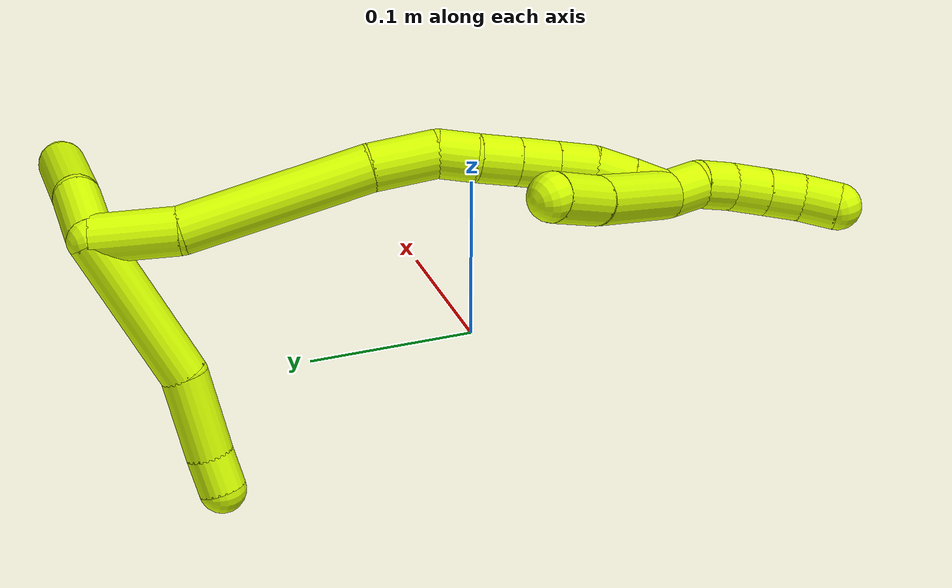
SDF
<sdf version="1.7">
 <world name="default">
  <model name="15">
   <static>0</static>
   <link name="15">
    <collision name="collision-cylinder-e_1_2_8">
     <pose>-0.038235 -0.012647 -0.013 2.36995 -1.12789 -1.99982</pose>
     <geometry><cylinder><radius>0.0125</radius><length>0.084636</length></cylinder></geometry>
     <surface>
      <friction><ode><mu>1.16</mu><mu2>1.16</mu2><slip1>0</slip1><slip2>0</slip2></ode></friction>
      <contact><ode><kp>1e+06</kp><kd>1</kd><max_vel>0</max_vel><min_depth>0.001</min_depth></ode></contact>
     </surface>
    </collision>
    <visual name="visual-cylinder-e_1_2_8">
     <pose>-0.038235 -0.012647 -0.013 2.36995 -1.12789 -1.99982</pose>
     <geometry><cylinder><radius>0.0125</radius><length>0.084636</length></cylinder></geometry>
     <material><ambient>0.835294 1 0 1</ambient></material>
    </visual>
    <collision name="collision-cylinder-e_2_8_9">
     <pose>-0.098503 -0.029824 -0.027333 1.85716 -1.35965 -1.64834</pose>
     <geometry><cylinder><radius>0.0125</radius><length>0.045066</length></cylinder></geometry>
     <surface>
      <friction><ode><mu>1.16</mu><mu2>1.16</mu2><slip1>0</slip1><slip2>0</slip2></ode></friction>
      <contact><ode><kp>1e+06</kp><kd>1</kd><max_vel>0</max_vel><min_depth>0.001</min_depth></ode></contact>
     </surface>
    </collision>
    <visual name="visual-cylinder-e_2_8_9">
     <pose>-0.098503 -0.029824 -0.027333 1.85716 -1.35965 -1.64834</pose>
     <geometry><cylinder><radius>0.0125</radius><length>0.045066</length></cylinder></geometry>
     <material><ambient>0.835294 1 0 1</ambient></material>
    </visual>
    <collision name="collision-cylinder-e_3_9_6">
     <pose>-0.130234 -0.037276 -0.029286 1.77964 -1.27204 -1.478</pose>
     <geometry><cylinder><radius>0.0125</radius><length>0.020297</length></cylinder></geometry>
     <surface>
      <friction><ode><mu>1.16</mu><mu2>1.16</mu2><slip1>0</slip1><slip2>0</slip2></ode></friction>
      <contact><ode><kp>1e+06</kp><kd>1</kd><max_vel>0</max_vel><min_depth>0.001</min_depth></ode></contact>
     </surface>
    </collision>
    <visual name="visual-cylinder-e_3_9_6">
     <pose>-0.130234 -0.037276 -0.029286 1.77964 -1.27204 -1.478</pose>
     <geometry><cylinder><radius>0.0125</radius><length>0.020297</length></cylinder></geometry>
     <material><ambient>0.835294 1 0 1</ambient></material>
    </visual>
    <collision name="collision-cylinder-e_1_2_10">
     <pose>0.004286 0.017706 -0.006008 -1.89795 0.225352 -0.313197</pose>
     <geometry><cylinder><radius>0.0125</radius><length>0.038366</length></cylinder></geometry>
     <surface>
      <friction><ode><mu>1.16</mu><mu2>1.16</mu2><slip1>0</slip1><slip2>0</slip2></ode></friction>
      <contact><ode><kp>1e+06</kp><kd>1</kd><max_vel>0</max_vel><min_depth>0.001</min_depth></ode></contact>
     </surface>
    </collision>
    <visual name="visual-cylinder-e_1_2_10">
     <pose>0.004286 0.017706 -0.006008 -1.89795 0.225352 -0.313197</pose>
     <geometry><cylinder><radius>0.0125</radius><length>0.038366</length></cylinder></geometry>
     <material><ambient>0.835294 1 0 1</ambient></material>
    </visual>
    <collision name="collision-cylinder-e_2_10_5">
     <pose>0.006881 0.064427 -0.022264 -1.91028 -0.054928 0.077632</pose>
     <geometry><cylinder><radius>0.0125</radius><length>0.061634</length></cylinder></geometry>
     <surface>
      <friction><ode><mu>1.16</mu><mu2>1.16</mu2><slip1>0</slip1><slip2>0</slip2></ode></friction>
      <contact><ode><kp>1e+06</kp><kd>1</kd><max_vel>0</max_vel><min_depth>0.001</min_depth></ode></contact>
     </surface>
    </collision>
    <visual name="visual-cylinder-e_2_10_5">
     <pose>0.006881 0.064427 -0.022264 -1.91028 -0.054928 0.077632</pose>
     <geometry><cylinder><radius>0.0125</radius><length>0.061634</length></cylinder></geometry>
     <material><ambient>0.835294 1 0 1</ambient></material>
    </visual>
    <collision name="collision-cylinder-e_1_2_11">
     <pose>-0.000184 -0.012448 -0.018412 2.5471 -0.008265 -0.026981</pose>
     <geometry><cylinder><radius>0.0125</radius><length>0.044451</length></cylinder></geometry>
     <surface>
      <friction><ode><mu>1.16</mu><mu2>1.16</mu2><slip1>0</slip1><slip2>0</slip2></ode></friction>
      <contact><ode><kp>1e+06</kp><kd>1</kd><max_vel>0</max_vel><min_depth>0.001</min_depth></ode></contact>
     </surface>
    </collision>
    <visual name="visual-cylinder-e_1_2_11">
     <pose>-0.000184 -0.012448 -0.018412 2.5471 -0.008265 -0.026981</pose>
     <geometry><cylinder><radius>0.0125</radius><length>0.044451</length></cylinder></geometry>
     <material><ambient>0.835294 1 0 1</ambient></material>
    </visual>
    <collision name="collision-cylinder-e_2_11_12">
     <pose>0.007752 -0.044366 -0.08174 2.73255 0.164362 0.756004</pose>
     <geometry><cylinder><radius>0.0125</radius><length>0.099248</length></cylinder></geometry>
     <surface>
      <friction><ode><mu>1.16</mu><mu2>1.16</mu2><slip1>0</slip1><slip2>0</slip2></ode></friction>
      <contact><ode><kp>1e+06</kp><kd>1</kd><max_vel>0</max_vel><min_depth>0.001</min_depth></ode></contact>
     </surface>
    </collision>
    <visual name="visual-cylinder-e_2_11_12">
     <pose>0.007752 -0.044366 -0.08174 2.73255 0.164362 0.756004</pose>
     <geometry><cylinder><radius>0.0125</radius><length>0.099248</length></cylinder></geometry>
     <material><ambient>0.835294 1 0 1</ambient></material>
    </visual>
    <collision name="collision-cylinder-e_3_12_13">
     <pose>0.016588 -0.070577 -0.142698 2.74382 0.041146 0.203472</pose>
     <geometry><cylinder><radius>0.0125</radius><length>0.034829</length></cylinder></geometry>
     <surface>
      <friction><ode><mu>1.16</mu><mu2>1.16</mu2><slip1>0</slip1><slip2>0</slip2></ode></friction>
      <contact><ode><kp>1e+06</kp><kd>1</kd><max_vel>0</max_vel><min_depth>0.001</min_depth></ode></contact>
     </surface>
    </collision>
    <visual name="visual-cylinder-e_3_12_13">
     <pose>0.016588 -0.070577 -0.142698 2.74382 0.041146 0.203472</pose>
     <geometry><cylinder><radius>0.0125</radius><length>0.034829</length></cylinder></geometry>
     <material><ambient>0.835294 1 0 1</ambient></material>
    </visual>
    <collision name="collision-cylinder-e_4_13_14">
     <pose>0.015098 -0.083148 -0.16684 2.51778 -0.217575 -0.653205</pose>
     <geometry><cylinder><radius>0.0125</radius><length>0.020444</length></cylinder></geometry>
     <surface>
      <friction><ode><mu>1.16</mu><mu2>1.16</mu2><slip1>0</slip1><slip2>0</slip2></ode></friction>
      <contact><ode><kp>1e+06</kp><kd>1</kd><max_vel>0</max_vel><min_depth>0.001</min_depth></ode></contact>
     </surface>
    </collision>
    <visual name="visual-cylinder-e_4_13_14">
     <pose>0.015098 -0.083148 -0.16684 2.51778 -0.217575 -0.653205</pose>
     <geometry><cylinder><radius>0.0125</radius><length>0.020444</length></cylinder></geometry>
     <material><ambient>0.835294 1 0 1</ambient></material>
    </visual>
    <collision name="collision-cylinder-e_5_14_15">
     <pose>0.010227 -0.093246 -0.184108 2.70583 -0.257603 -1.05864</pose>
     <geometry><cylinder><radius>0.0125</radius><length>0.020912</length></cylinder></geometry>
     <surface>
      <friction><ode><mu>1.16</mu><mu2>1.16</mu2><slip1>0</slip1><slip2>0</slip2></ode></friction>
      <contact><ode><kp>1e+06</kp><kd>1</kd><max_vel>0</max_vel><min_depth>0.001</min_depth></ode></contact>
     </surface>
    </collision>
    <visual name="visual-cylinder-e_5_14_15">
     <pose>0.010227 -0.093246 -0.184108 2.70583 -0.257603 -1.05864</pose>
     <geometry><cylinder><radius>0.0125</radius><length>0.020912</length></cylinder></geometry>
     <material><ambient>0.835294 1 0 1</ambient></material>
    </visual>
    <collision name="collision-cylinder-e_6_15_16">
     <pose>0.004995 -0.101775 -0.201982 2.6865 -0.259045 -1.02478</pose>
     <geometry><cylinder><radius>0.0125</radius><length>0.020058</length></cylinder></geometry>
     <surface>
      <friction><ode><mu>1.16</mu><mu2>1.16</mu2><slip1>0</slip1><slip2>0</slip2></ode></friction>
      <contact><ode><kp>1e+06</kp><kd>1</kd><max_vel>0</max_vel><min_depth>0.001</min_depth></ode></contact>
     </surface>
    </collision>
    <visual name="visual-cylinder-e_6_15_16">
     <pose>0.004995 -0.101775 -0.201982 2.6865 -0.259045 -1.02478</pose>
     <geometry><cylinder><radius>0.0125</radius><length>0.020058</length></cylinder></geometry>
     <material><ambient>0.835294 1 0 1</ambient></material>
    </visual>
    <collision name="collision-cylinder-e_7_16_17">
     <pose>-0.000141 -0.110354 -0.219367 2.67988 -0.258856 -1.01143</pose>
     <geometry><cylinder><radius>0.0125</radius><length>0.020053</length></cylinder></geometry>
     <surface>
      <friction><ode><mu>1.16</mu><mu2>1.16</mu2><slip1>0</slip1><slip2>0</slip2></ode></friction>
      <contact><ode><kp>1e+06</kp><kd>1</kd><max_vel>0</max_vel><min_depth>0.001</min_depth></ode></contact>
     </surface>
    </collision>
    <visual name="visual-cylinder-e_7_16_17">
     <pose>-0.000141 -0.110354 -0.219367 2.67988 -0.258856 -1.01143</pose>
     <geometry><cylinder><radius>0.0125</radius><length>0.020053</length></cylinder></geometry>
     <material><ambient>0.835294 1 0 1</ambient></material>
    </visual>
    <collision name="collision-cylinder-e_8_17_18">
     <pose>-0.00676 -0.120292 -0.235257 2.47964 -0.417213 -1.10428</pose>
     <geometry><cylinder><radius>0.0125</radius><length>0.020003</length></cylinder></geometry>
     <surface>
      <friction><ode><mu>1.16</mu><mu2>1.16</mu2><slip1>0</slip1><slip2>0</slip2></ode></friction>
      <contact><ode><kp>1e+06</kp><kd>1</kd><max_vel>0</max_vel><min_depth>0.001</min_depth></ode></contact>
     </surface>
    </collision>
    <visual name="visual-cylinder-e_8_17_18">
     <pose>-0.00676 -0.120292 -0.235257 2.47964 -0.417213 -1.10428</pose>
     <geometry><cylinder><radius>0.0125</radius><length>0.020003</length></cylinder></geometry>
     <material><ambient>0.835294 1 0 1</ambient></material>
    </visual>
    <collision name="collision-cylinder-e_9_18_1">
     <pose>-0.015087 -0.13176 -0.249366 2.43829 -0.441556 -1.09797</pose>
     <geometry><cylinder><radius>0.0125</radius><length>0.020001</length></cylinder></geometry>
     <surface>
      <friction><ode><mu>1.16</mu><mu2>1.16</mu2><slip1>0</slip1><slip2>0</slip2></ode></friction>
      <contact><ode><kp>1e+06</kp><kd>1</kd><max_vel>0</max_vel><min_depth>0.001</min_depth></ode></contact>
     </surface>
    </collision>
    <visual name="visual-cylinder-e_9_18_1">
     <pose>-0.015087 -0.13176 -0.249366 2.43829 -0.441556 -1.09797</pose>
     <geometry><cylinder><radius>0.0125</radius><length>0.020001</length></cylinder></geometry>
     <material><ambient>0.835294 1 0 1</ambient></material>
    </visual>
    <collision name="collision-cylinder-e_1_1_19">
     <pose>-0.019127 -0.138988 -0.266163 3.003 0.023312 0.332784</pose>
     <geometry><cylinder><radius>0.0125</radius><length>0.02</length></cylinder></geometry>
     <surface>
      <friction><ode><mu>1.16</mu><mu2>1.16</mu2><slip1>0</slip1><slip2>0</slip2></ode></friction>
      <contact><ode><kp>1e+06</kp><kd>1</kd><max_vel>0</max_vel><min_depth>0.001</min_depth></ode></contact>
     </surface>
    </collision>
    <visual name="visual-cylinder-e_1_1_19">
     <pose>-0.019127 -0.138988 -0.266163 3.003 0.023312 0.332784</pose>
     <geometry><cylinder><radius>0.0125</radius><length>0.02</length></cylinder></geometry>
     <material><ambient>0.835294 1 0 1</ambient></material>
    </visual>
    <collision name="collision-cylinder-e_2_19_20">
     <pose>-0.022014 -0.142111 -0.285404 2.95727 -0.31729 -2.09391</pose>
     <geometry><cylinder><radius>0.0125</radius><length>0.02</length></cylinder></geometry>
     <surface>
      <friction><ode><mu>1.16</mu><mu2>1.16</mu2><slip1>0</slip1><slip2>0</slip2></ode></friction>
      <contact><ode><kp>1e+06</kp><kd>1</kd><max_vel>0</max_vel><min_depth>0.001</min_depth></ode></contact>
     </surface>
    </collision>
    <visual name="visual-cylinder-e_2_19_20">
     <pose>-0.022014 -0.142111 -0.285404 2.95727 -0.31729 -2.09391</pose>
     <geometry><cylinder><radius>0.0125</radius><length>0.02</length></cylinder></geometry>
     <material><ambient>0.835294 1 0 1</ambient></material>
    </visual>
    <collision name="collision-cylinder-e_3_20_21">
     <pose>-0.028044 -0.148478 -0.303119 2.63687 -0.295273 -1.04628</pose>
     <geometry><cylinder><radius>0.0125</radius><length>0.02</length></cylinder></geometry>
     <surface>
      <friction><ode><mu>1.16</mu><mu2>1.16</mu2><slip1>0</slip1><slip2>0</slip2></ode></friction>
      <contact><ode><kp>1e+06</kp><kd>1</kd><max_vel>0</max_vel><min_depth>0.001</min_depth></ode></contact>
     </surface>
    </collision>
    <visual name="visual-cylinder-e_3_20_21">
     <pose>-0.028044 -0.148478 -0.303119 2.63687 -0.295273 -1.04628</pose>
     <geometry><cylinder><radius>0.0125</radius><length>0.02</length></cylinder></geometry>
     <material><ambient>0.835294 1 0 1</ambient></material>
    </visual>
    <collision name="collision-cylinder-e_4_21_22">
     <pose>-0.033915 -0.157744 -0.319842 2.63443 -0.30064 -1.0578</pose>
     <geometry><cylinder><radius>0.0125</radius><length>0.02</length></cylinder></geometry>
     <surface>
      <friction><ode><mu>1.16</mu><mu2>1.16</mu2><slip1>0</slip1><slip2>0</slip2></ode></friction>
      <contact><ode><kp>1e+06</kp><kd>1</kd><max_vel>0</max_vel><min_depth>0.001</min_depth></ode></contact>
     </surface>
    </collision>
    <visual name="visual-cylinder-e_4_21_22">
     <pose>-0.033915 -0.157744 -0.319842 2.63443 -0.30064 -1.0578</pose>
     <geometry><cylinder><radius>0.0125</radius><length>0.02</length></cylinder></geometry>
     <material><ambient>0.835294 1 0 1</ambient></material>
    </visual>
    <collision name="collision-cylinder-e_5_22_4">
     <pose>-0.039412 -0.169624 -0.334606 2.29578 -0.25629 -0.557675</pose>
     <geometry><cylinder><radius>0.0125</radius><length>0.02</length></cylinder></geometry>
     <surface>
      <friction><ode><mu>1.16</mu><mu2>1.16</mu2><slip1>0</slip1><slip2>0</slip2></ode></friction>
      <contact><ode><kp>1e+06</kp><kd>1</kd><max_vel>0</max_vel><min_depth>0.001</min_depth></ode></contact>
     </surface>
    </collision>
    <visual name="visual-cylinder-e_5_22_4">
     <pose>-0.039412 -0.169624 -0.334606 2.29578 -0.25629 -0.557675</pose>
     <geometry><cylinder><radius>0.0125</radius><length>0.02</length></cylinder></geometry>
     <material><ambient>0.835294 1 0 1</ambient></material>
    </visual>
    <collision name="collision-cylinder-e_1_1_23">
     <pose>-0.009212 -0.145764 -0.226551 0.267934 0.318194 0.043243</pose>
     <geometry><cylinder><radius>0.0125</radius><length>0.064877</length></cylinder></geometry>
     <surface>
      <friction><ode><mu>1.16</mu><mu2>1.16</mu2><slip1>0</slip1><slip2>0</slip2></ode></friction>
      <contact><ode><kp>1e+06</kp><kd>1</kd><max_vel>0</max_vel><min_depth>0.001</min_depth></ode></contact>
     </surface>
    </collision>
    <visual name="visual-cylinder-e_1_1_23">
     <pose>-0.009212 -0.145764 -0.226551 0.267934 0.318194 0.043243</pose>
     <geometry><cylinder><radius>0.0125</radius><length>0.064877</length></cylinder></geometry>
     <material><ambient>0.835294 1 0 1</ambient></material>
    </visual>
    <collision name="collision-cylinder-e_2_23_3">
     <pose>0.007815 -0.157123 -0.181002 0.199505 0.402489 0.04083</pose>
     <geometry><cylinder><radius>0.0125</radius><length>0.035123</length></cylinder></geometry>
     <surface>
      <friction><ode><mu>1.16</mu><mu2>1.16</mu2><slip1>0</slip1><slip2>0</slip2></ode></friction>
      <contact><ode><kp>1e+06</kp><kd>1</kd><max_vel>0</max_vel><min_depth>0.001</min_depth></ode></contact>
     </surface>
    </collision>
    <visual name="visual-cylinder-e_2_23_3">
     <pose>0.007815 -0.157123 -0.181002 0.199505 0.402489 0.04083</pose>
     <geometry><cylinder><radius>0.0125</radius><length>0.035123</length></cylinder></geometry>
     <material><ambient>0.835294 1 0 1</ambient></material>
    </visual>
    <collision name="collision-sphere-3">
     <pose>0.014694 -0.160325 -0.165165 0 -0 0</pose>
     <geometry><sphere><radius>0.0125</radius></sphere></geometry>
     <surface>
      <friction><ode><mu>1.16</mu><mu2>1.16</mu2><slip1>0</slip1><slip2>0</slip2></ode></friction>
      <contact><ode><kp>1e+06</kp><kd>1</kd><max_vel>0</max_vel><min_depth>0.001</min_depth></ode></contact>
     </surface>
    </collision>
    <visual name="visual-sphere-3">
     <pose>0.014694 -0.160325 -0.165165 0 -0 0</pose>
     <geometry><sphere><radius>0.0125</radius></sphere></geometry>
     <material><ambient>0.835294 1 0 1</ambient></material>
    </visual>
    <collision name="collision-sphere-23">
     <pose>0.000936 -0.153921 -0.19684 0 -0 0</pose>
     <geometry><sphere><radius>0.0125</radius></sphere></geometry>
     <surface>
      <friction><ode><mu>1.16</mu><mu2>1.16</mu2><slip1>0</slip1><slip2>0</slip2></ode></friction>
      <contact><ode><kp>1e+06</kp><kd>1</kd><max_vel>0</max_vel><min_depth>0.001</min_depth></ode></contact>
     </surface>
    </collision>
    <visual name="visual-sphere-23">
     <pose>0.000936 -0.153921 -0.19684 0 -0 0</pose>
     <geometry><sphere><radius>0.0125</radius></sphere></geometry>
     <material><ambient>0.835294 1 0 1</ambient></material>
    </visual>
    <collision name="collision-sphere-4">
     <pose>-0.041947 -0.176864 -0.341021 0 -0 0</pose>
     <geometry><sphere><radius>0.0125</radius></sphere></geometry>
     <surface>
      <friction><ode><mu>1.16</mu><mu2>1.16</mu2><slip1>0</slip1><slip2>0</slip2></ode></friction>
      <contact><ode><kp>1e+06</kp><kd>1</kd><max_vel>0</max_vel><min_depth>0.001</min_depth></ode></contact>
     </surface>
    </collision>
    <visual name="visual-sphere-4">
     <pose>-0.041947 -0.176864 -0.341021 0 -0 0</pose>
     <geometry><sphere><radius>0.0125</radius></sphere></geometry>
     <material><ambient>0.835294 1 0 1</ambient></material>
    </visual>
    <collision name="collision-sphere-22">
     <pose>-0.036877 -0.162383 -0.328191 0 -0 0</pose>
     <geometry><sphere><radius>0.0125</radius></sphere></geometry>
     <surface>
      <friction><ode><mu>1.16</mu><mu2>1.16</mu2><slip1>0</slip1><slip2>0</slip2></ode></friction>
      <contact><ode><kp>1e+06</kp><kd>1</kd><max_vel>0</max_vel><min_depth>0.001</min_depth></ode></contact>
     </surface>
    </collision>
    <visual name="visual-sphere-22">
     <pose>-0.036877 -0.162383 -0.328191 0 -0 0</pose>
     <geometry><sphere><radius>0.0125</radius></sphere></geometry>
     <material><ambient>0.835294 1 0 1</ambient></material>
    </visual>
    <collision name="collision-sphere-21">
     <pose>-0.030954 -0.153105 -0.311493 0 -0 0</pose>
     <geometry><sphere><radius>0.0125</radius></sphere></geometry>
     <surface>
      <friction><ode><mu>1.16</mu><mu2>1.16</mu2><slip1>0</slip1><slip2>0</slip2></ode></friction>
      <contact><ode><kp>1e+06</kp><kd>1</kd><max_vel>0</max_vel><min_depth>0.001</min_depth></ode></contact>
     </surface>
    </collision>
    <visual name="visual-sphere-21">
     <pose>-0.030954 -0.153105 -0.311493 0 -0 0</pose>
     <geometry><sphere><radius>0.0125</radius></sphere></geometry>
     <material><ambient>0.835294 1 0 1</ambient></material>
    </visual>
    <collision name="collision-sphere-20">
     <pose>-0.025134 -0.143852 -0.294744 0 -0 0</pose>
     <geometry><sphere><radius>0.0125</radius></sphere></geometry>
     <surface>
      <friction><ode><mu>1.16</mu><mu2>1.16</mu2><slip1>0</slip1><slip2>0</slip2></ode></friction>
      <contact><ode><kp>1e+06</kp><kd>1</kd><max_vel>0</max_vel><min_depth>0.001</min_depth></ode></contact>
     </surface>
    </collision>
    <visual name="visual-sphere-20">
     <pose>-0.025134 -0.143852 -0.294744 0 -0 0</pose>
     <geometry><sphere><radius>0.0125</radius></sphere></geometry>
     <material><ambient>0.835294 1 0 1</ambient></material>
    </visual>
    <collision name="collision-sphere-5">
     <pose>0.005189 0.093441 -0.03251 0 -0 0</pose>
     <geometry><sphere><radius>0.0125</radius></sphere></geometry>
     <surface>
      <friction><ode><mu>1.16</mu><mu2>1.16</mu2><slip1>0</slip1><slip2>0</slip2></ode></friction>
      <contact><ode><kp>1e+06</kp><kd>1</kd><max_vel>0</max_vel><min_depth>0.001</min_depth></ode></contact>
     </surface>
    </collision>
    <visual name="visual-sphere-5">
     <pose>0.005189 0.093441 -0.03251 0 -0 0</pose>
     <geometry><sphere><radius>0.0125</radius></sphere></geometry>
     <material><ambient>0.835294 1 0 1</ambient></material>
    </visual>
    <collision name="collision-sphere-10">
     <pose>0.008573 0.035412 -0.012017 0 -0 0</pose>
     <geometry><sphere><radius>0.0125</radius></sphere></geometry>
     <surface>
      <friction><ode><mu>1.16</mu><mu2>1.16</mu2><slip1>0</slip1><slip2>0</slip2></ode></friction>
      <contact><ode><kp>1e+06</kp><kd>1</kd><max_vel>0</max_vel><min_depth>0.001</min_depth></ode></contact>
     </surface>
    </collision>
    <visual name="visual-sphere-10">
     <pose>0.008573 0.035412 -0.012017 0 -0 0</pose>
     <geometry><sphere><radius>0.0125</radius></sphere></geometry>
     <material><ambient>0.835294 1 0 1</ambient></material>
    </visual>
    <collision name="collision-sphere-6">
     <pose>-0.139933 -0.040198 -0.029906 0 -0 0</pose>
     <geometry><sphere><radius>0.0125</radius></sphere></geometry>
     <surface>
      <friction><ode><mu>1.16</mu><mu2>1.16</mu2><slip1>0</slip1><slip2>0</slip2></ode></friction>
      <contact><ode><kp>1e+06</kp><kd>1</kd><max_vel>0</max_vel><min_depth>0.001</min_depth></ode></contact>
     </surface>
    </collision>
    <visual name="visual-sphere-6">
     <pose>-0.139933 -0.040198 -0.029906 0 -0 0</pose>
     <geometry><sphere><radius>0.0125</radius></sphere></geometry>
     <material><ambient>0.835294 1 0 1</ambient></material>
    </visual>
    <collision name="collision-sphere-9">
     <pose>-0.120535 -0.034354 -0.028667 0 -0 0</pose>
     <geometry><sphere><radius>0.0125</radius></sphere></geometry>
     <surface>
      <friction><ode><mu>1.16</mu><mu2>1.16</mu2><slip1>0</slip1><slip2>0</slip2></ode></friction>
      <contact><ode><kp>1e+06</kp><kd>1</kd><max_vel>0</max_vel><min_depth>0.001</min_depth></ode></contact>
     </surface>
    </collision>
    <visual name="visual-sphere-9">
     <pose>-0.120535 -0.034354 -0.028667 0 -0 0</pose>
     <geometry><sphere><radius>0.0125</radius></sphere></geometry>
     <material><ambient>0.835294 1 0 1</ambient></material>
    </visual>
    <collision name="collision-sphere-2">
     <geometry><sphere><radius>0.0125</radius></sphere></geometry>
     <surface>
      <friction><ode><mu>1.16</mu><mu2>1.16</mu2><slip1>0</slip1><slip2>0</slip2></ode></friction>
      <contact><ode><kp>1e+06</kp><kd>1</kd><max_vel>0</max_vel><min_depth>0.001</min_depth></ode></contact>
     </surface>
    </collision>
    <visual name="visual-sphere-2">
     <geometry><sphere><radius>0.0125</radius></sphere></geometry>
     <material><ambient>0.835294 1 0 1</ambient></material>
    </visual>
    <collision name="collision-sphere-19">
     <pose>-0.018894 -0.140369 -0.276065 0 -0 0</pose>
     <geometry><sphere><radius>0.0125</radius></sphere></geometry>
     <surface>
      <friction><ode><mu>1.16</mu><mu2>1.16</mu2><slip1>0</slip1><slip2>0</slip2></ode></friction>
      <contact><ode><kp>1e+06</kp><kd>1</kd><max_vel>0</max_vel><min_depth>0.001</min_depth></ode></contact>
     </surface>
    </collision>
    <visual name="visual-sphere-19">
     <pose>-0.018894 -0.140369 -0.276065 0 -0 0</pose>
     <geometry><sphere><radius>0.0125</radius></sphere></geometry>
     <material><ambient>0.835294 1 0 1</ambient></material>
    </visual>
    <collision name="collision-sphere-8">
     <pose>-0.07647 -0.025293 -0.025999 0 -0 0</pose>
     <geometry><sphere><radius>0.0125</radius></sphere></geometry>
     <surface>
      <friction><ode><mu>1.16</mu><mu2>1.16</mu2><slip1>0</slip1><slip2>0</slip2></ode></friction>
      <contact><ode><kp>1e+06</kp><kd>1</kd><max_vel>0</max_vel><min_depth>0.001</min_depth></ode></contact>
     </surface>
    </collision>
    <visual name="visual-sphere-8">
     <pose>-0.07647 -0.025293 -0.025999 0 -0 0</pose>
     <geometry><sphere><radius>0.0125</radius></sphere></geometry>
     <material><ambient>0.835294 1 0 1</ambient></material>
    </visual>
    <collision name="collision-sphere-11">
     <pose>-0.000367 -0.024896 -0.036824 0 -0 0</pose>
     <geometry><sphere><radius>0.0125</radius></sphere></geometry>
     <surface>
      <friction><ode><mu>1.16</mu><mu2>1.16</mu2><slip1>0</slip1><slip2>0</slip2></ode></friction>
      <contact><ode><kp>1e+06</kp><kd>1</kd><max_vel>0</max_vel><min_depth>0.001</min_depth></ode></contact>
     </surface>
    </collision>
    <visual name="visual-sphere-11">
     <pose>-0.000367 -0.024896 -0.036824 0 -0 0</pose>
     <geometry><sphere><radius>0.0125</radius></sphere></geometry>
     <material><ambient>0.835294 1 0 1</ambient></material>
    </visual>
    <collision name="collision-sphere-12">
     <pose>0.015872 -0.063837 -0.126657 0 -0 0</pose>
     <geometry><sphere><radius>0.0125</radius></sphere></geometry>
     <surface>
      <friction><ode><mu>1.16</mu><mu2>1.16</mu2><slip1>0</slip1><slip2>0</slip2></ode></friction>
      <contact><ode><kp>1e+06</kp><kd>1</kd><max_vel>0</max_vel><min_depth>0.001</min_depth></ode></contact>
     </surface>
    </collision>
    <visual name="visual-sphere-12">
     <pose>0.015872 -0.063837 -0.126657 0 -0 0</pose>
     <geometry><sphere><radius>0.0125</radius></sphere></geometry>
     <material><ambient>0.835294 1 0 1</ambient></material>
    </visual>
    <collision name="collision-sphere-13">
     <pose>0.017304 -0.077317 -0.158739 0 -0 0</pose>
     <geometry><sphere><radius>0.0125</radius></sphere></geometry>
     <surface>
      <friction><ode><mu>1.16</mu><mu2>1.16</mu2><slip1>0</slip1><slip2>0</slip2></ode></friction>
      <contact><ode><kp>1e+06</kp><kd>1</kd><max_vel>0</max_vel><min_depth>0.001</min_depth></ode></contact>
     </surface>
    </collision>
    <visual name="visual-sphere-13">
     <pose>0.017304 -0.077317 -0.158739 0 -0 0</pose>
     <geometry><sphere><radius>0.0125</radius></sphere></geometry>
     <material><ambient>0.835294 1 0 1</ambient></material>
    </visual>
    <collision name="collision-sphere-14">
     <pose>0.012891 -0.088978 -0.174941 0 -0 0</pose>
     <geometry><sphere><radius>0.0125</radius></sphere></geometry>
     <surface>
      <friction><ode><mu>1.16</mu><mu2>1.16</mu2><slip1>0</slip1><slip2>0</slip2></ode></friction>
      <contact><ode><kp>1e+06</kp><kd>1</kd><max_vel>0</max_vel><min_depth>0.001</min_depth></ode></contact>
     </surface>
    </collision>
    <visual name="visual-sphere-14">
     <pose>0.012891 -0.088978 -0.174941 0 -0 0</pose>
     <geometry><sphere><radius>0.0125</radius></sphere></geometry>
     <material><ambient>0.835294 1 0 1</ambient></material>
    </visual>
    <collision name="collision-sphere-15">
     <pose>0.007564 -0.097514 -0.193274 0 -0 0</pose>
     <geometry><sphere><radius>0.0125</radius></sphere></geometry>
     <surface>
      <friction><ode><mu>1.16</mu><mu2>1.16</mu2><slip1>0</slip1><slip2>0</slip2></ode></friction>
      <contact><ode><kp>1e+06</kp><kd>1</kd><max_vel>0</max_vel><min_depth>0.001</min_depth></ode></contact>
     </surface>
    </collision>
    <visual name="visual-sphere-15">
     <pose>0.007564 -0.097514 -0.193274 0 -0 0</pose>
     <geometry><sphere><radius>0.0125</radius></sphere></geometry>
     <material><ambient>0.835294 1 0 1</ambient></material>
    </visual>
    <collision name="collision-sphere-16">
     <pose>0.002425 -0.106036 -0.21069 0 -0 0</pose>
     <geometry><sphere><radius>0.0125</radius></sphere></geometry>
     <surface>
      <friction><ode><mu>1.16</mu><mu2>1.16</mu2><slip1>0</slip1><slip2>0</slip2></ode></friction>
      <contact><ode><kp>1e+06</kp><kd>1</kd><max_vel>0</max_vel><min_depth>0.001</min_depth></ode></contact>
     </surface>
    </collision>
    <visual name="visual-sphere-16">
     <pose>0.002425 -0.106036 -0.21069 0 -0 0</pose>
     <geometry><sphere><radius>0.0125</radius></sphere></geometry>
     <material><ambient>0.835294 1 0 1</ambient></material>
    </visual>
    <collision name="collision-sphere-17">
     <pose>-0.002708 -0.114672 -0.228045 0 -0 0</pose>
     <geometry><sphere><radius>0.0125</radius></sphere></geometry>
     <surface>
      <friction><ode><mu>1.16</mu><mu2>1.16</mu2><slip1>0</slip1><slip2>0</slip2></ode></friction>
      <contact><ode><kp>1e+06</kp><kd>1</kd><max_vel>0</max_vel><min_depth>0.001</min_depth></ode></contact>
     </surface>
    </collision>
    <visual name="visual-sphere-17">
     <pose>-0.002708 -0.114672 -0.228045 0 -0 0</pose>
     <geometry><sphere><radius>0.0125</radius></sphere></geometry>
     <material><ambient>0.835294 1 0 1</ambient></material>
    </visual>
    <collision name="collision-sphere-18">
     <pose>-0.010813 -0.125913 -0.24247 0 -0 0</pose>
     <geometry><sphere><radius>0.0125</radius></sphere></geometry>
     <surface>
      <friction><ode><mu>1.16</mu><mu2>1.16</mu2><slip1>0</slip1><slip2>0</slip2></ode></friction>
      <contact><ode><kp>1e+06</kp><kd>1</kd><max_vel>0</max_vel><min_depth>0.001</min_depth></ode></contact>
     </surface>
    </collision>
    <visual name="visual-sphere-18">
     <pose>-0.010813 -0.125913 -0.24247 0 -0 0</pose>
     <geometry><sphere><radius>0.0125</radius></sphere></geometry>
     <material><ambient>0.835294 1 0 1</ambient></material>
    </visual>
    <collision name="collision-sphere-1">
     <pose>-0.01936 -0.137607 -0.256262 0 -0 0</pose>
     <geometry><sphere><radius>0.0125</radius></sphere></geometry>
     <surface>
      <friction><ode><mu>1.16</mu><mu2>1.16</mu2><slip1>0</slip1><slip2>0</slip2></ode></friction>
      <contact><ode><kp>1e+06</kp><kd>1</kd><max_vel>0</max_vel><min_depth>0.001</min_depth></ode></contact>
     </surface>
    </collision>
    <visual name="visual-sphere-1">
     <pose>-0.01936 -0.137607 -0.256262 0 -0 0</pose>
     <geometry><sphere><radius>0.0125</radius></sphere></geometry>
     <material><ambient>0.835294 1 0 1</ambient></material>
    </visual>
    <inertial>
     <pose>-0.015175 -0.065328 -0.126764 0 -0 0</pose>
     <mass>0.75</mass>
     <inertia><ixx>0.000144</ixx><ixy>0</ixy><ixz>0</ixz><iyy>2.2e-05</iyy><iyz>0</iyz><izz>6.2e-05</izz></inertia>
    </inertial>
   </link>
   <pose>-0.089467 0.23442 0.145832 -1.92522 -1.46638 0.655378</pose>
  </model>
 </world>
</sdf>
